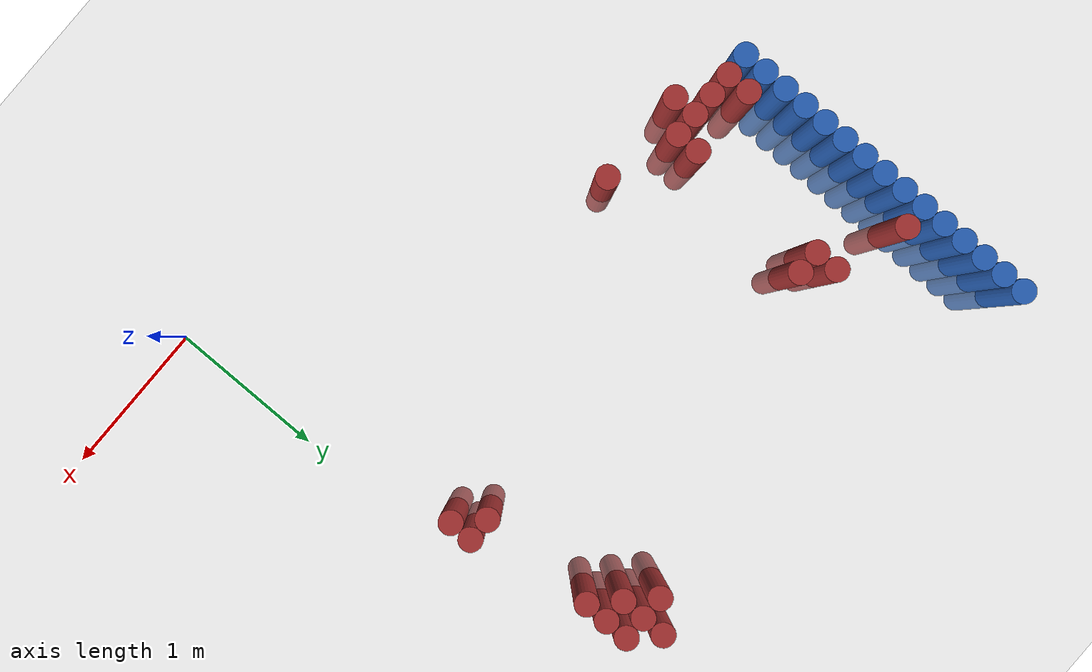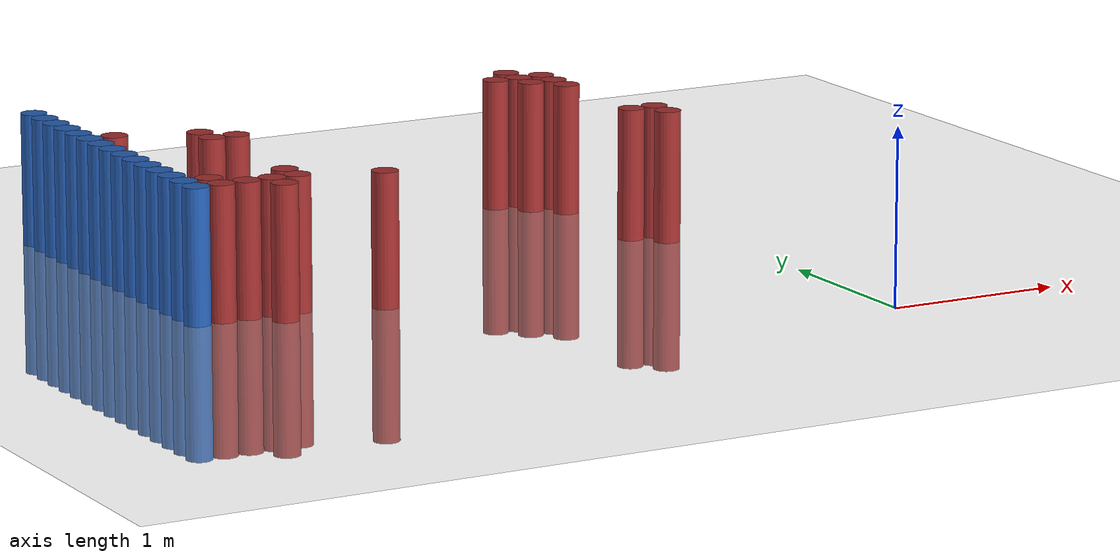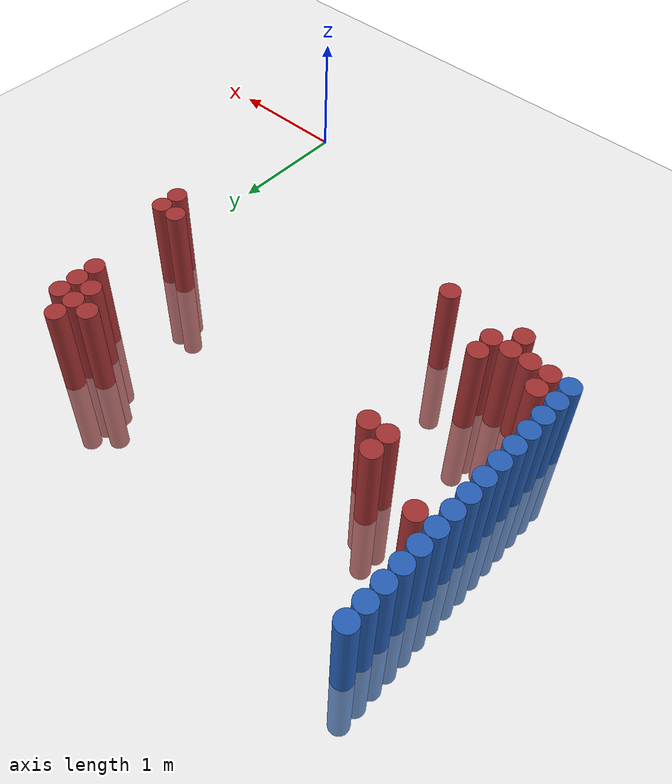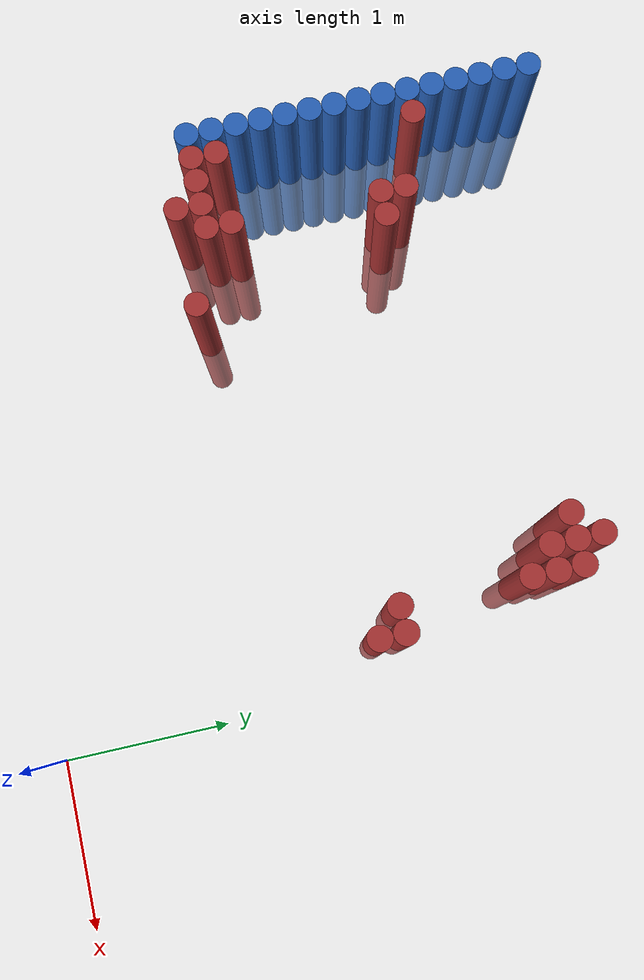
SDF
<sdf version="1.6">
 <world name="default">
  <model name="ground_plane">
   <static>1</static>
   <link name="link">
    <collision name="collision">
     <geometry><plane><normal>0 0 1</normal><size>100 100</size></plane></geometry>
     <surface><friction><ode><mu>100</mu><mu2>50</mu2></ode></friction></surface>
    </collision>
    <visual name="visual">
     <cast_shadows>0</cast_shadows>
     <geometry><plane><normal>0 0 1</normal><size>100 100</size></plane></geometry>
     <material>
      <script><uri>file://media/materials/scripts/gazebo.material</uri><name>Gazebo/Grey</name></script>
     </material>
    </visual>
   </link>
  </model>
  <model name="unit_cylinder_135">
   <static>1</static>
   <pose>-3.425000 1.525000 0.000000 0.000000 0.000000 0.000000</pose>
   <link name="link">
    <inertial>
     <mass>1</mass>
     <inertia><ixx>0.145833</ixx><ixy>0</ixy><ixz>0</ixz><iyy>0.145833</iyy><iyz>0</iyz><izz>0.125</izz></inertia>
    </inertial>
    <collision name="collision">
     <geometry><cylinder><radius>0.075000</radius><length>1.5</length></cylinder></geometry>
    </collision>
    <visual name="visual">
     <geometry><cylinder><radius>0.075000</radius><length>1.5</length></cylinder></geometry>
     <material>
      <ambient>0.152000 0.379000 0.720000 1</ambient>
      <diffuse>0.152000 0.379000 0.720000 1</diffuse>
     </material>
     <material>
      <script><name>Gazebo/Grey</name><uri>file://media/materials/scripts/gazebo.material</uri></script>
     </material>
    </visual>
   </link>
  </model>
  <model name="unit_cylinder_137">
   <static>1</static>
   <pose>-3.425000 1.675000 0.000000 0.000000 0.000000 0.000000</pose>
   <link name="link">
    <inertial>
     <mass>1</mass>
     <inertia><ixx>0.145833</ixx><ixy>0</ixy><ixz>0</ixz><iyy>0.145833</iyy><iyz>0</iyz><izz>0.125</izz></inertia>
    </inertial>
    <collision name="collision">
     <geometry><cylinder><radius>0.075000</radius><length>1.5</length></cylinder></geometry>
    </collision>
    <visual name="visual">
     <geometry><cylinder><radius>0.075000</radius><length>1.5</length></cylinder></geometry>
     <material>
      <ambient>0.152000 0.379000 0.720000 1</ambient>
      <diffuse>0.152000 0.379000 0.720000 1</diffuse>
     </material>
     <material>
      <script><name>Gazebo/Grey</name><uri>file://media/materials/scripts/gazebo.material</uri></script>
     </material>
    </visual>
   </link>
  </model>
  <model name="unit_cylinder_139">
   <static>1</static>
   <pose>-3.425000 1.825000 0.000000 0.000000 0.000000 0.000000</pose>
   <link name="link">
    <inertial>
     <mass>1</mass>
     <inertia><ixx>0.145833</ixx><ixy>0</ixy><ixz>0</ixz><iyy>0.145833</iyy><iyz>0</iyz><izz>0.125</izz></inertia>
    </inertial>
    <collision name="collision">
     <geometry><cylinder><radius>0.075000</radius><length>1.5</length></cylinder></geometry>
    </collision>
    <visual name="visual">
     <geometry><cylinder><radius>0.075000</radius><length>1.5</length></cylinder></geometry>
     <material>
      <ambient>0.152000 0.379000 0.720000 1</ambient>
      <diffuse>0.152000 0.379000 0.720000 1</diffuse>
     </material>
     <material>
      <script><name>Gazebo/Grey</name><uri>file://media/materials/scripts/gazebo.material</uri></script>
     </material>
    </visual>
   </link>
  </model>
  <model name="unit_cylinder_141">
   <static>1</static>
   <pose>-3.425000 1.975000 0.000000 0.000000 0.000000 0.000000</pose>
   <link name="link">
    <inertial>
     <mass>1</mass>
     <inertia><ixx>0.145833</ixx><ixy>0</ixy><ixz>0</ixz><iyy>0.145833</iyy><iyz>0</iyz><izz>0.125</izz></inertia>
    </inertial>
    <collision name="collision">
     <geometry><cylinder><radius>0.075000</radius><length>1.5</length></cylinder></geometry>
    </collision>
    <visual name="visual">
     <geometry><cylinder><radius>0.075000</radius><length>1.5</length></cylinder></geometry>
     <material>
      <ambient>0.152000 0.379000 0.720000 1</ambient>
      <diffuse>0.152000 0.379000 0.720000 1</diffuse>
     </material>
     <material>
      <script><name>Gazebo/Grey</name><uri>file://media/materials/scripts/gazebo.material</uri></script>
     </material>
    </visual>
   </link>
  </model>
  <model name="unit_cylinder_143">
   <static>1</static>
   <pose>-3.425000 2.125000 0.000000 0.000000 0.000000 0.000000</pose>
   <link name="link">
    <inertial>
     <mass>1</mass>
     <inertia><ixx>0.145833</ixx><ixy>0</ixy><ixz>0</ixz><iyy>0.145833</iyy><iyz>0</iyz><izz>0.125</izz></inertia>
    </inertial>
    <collision name="collision">
     <geometry><cylinder><radius>0.075000</radius><length>1.5</length></cylinder></geometry>
    </collision>
    <visual name="visual">
     <geometry><cylinder><radius>0.075000</radius><length>1.5</length></cylinder></geometry>
     <material>
      <ambient>0.152000 0.379000 0.720000 1</ambient>
      <diffuse>0.152000 0.379000 0.720000 1</diffuse>
     </material>
     <material>
      <script><name>Gazebo/Grey</name><uri>file://media/materials/scripts/gazebo.material</uri></script>
     </material>
    </visual>
   </link>
  </model>
  <model name="unit_cylinder_145">
   <static>1</static>
   <pose>-3.425000 2.275000 0.000000 0.000000 0.000000 0.000000</pose>
   <link name="link">
    <inertial>
     <mass>1</mass>
     <inertia><ixx>0.145833</ixx><ixy>0</ixy><ixz>0</ixz><iyy>0.145833</iyy><iyz>0</iyz><izz>0.125</izz></inertia>
    </inertial>
    <collision name="collision">
     <geometry><cylinder><radius>0.075000</radius><length>1.5</length></cylinder></geometry>
    </collision>
    <visual name="visual">
     <geometry><cylinder><radius>0.075000</radius><length>1.5</length></cylinder></geometry>
     <material>
      <ambient>0.152000 0.379000 0.720000 1</ambient>
      <diffuse>0.152000 0.379000 0.720000 1</diffuse>
     </material>
     <material>
      <script><name>Gazebo/Grey</name><uri>file://media/materials/scripts/gazebo.material</uri></script>
     </material>
    </visual>
   </link>
  </model>
  <model name="unit_cylinder_147">
   <static>1</static>
   <pose>-3.425000 2.425000 0.000000 0.000000 0.000000 0.000000</pose>
   <link name="link">
    <inertial>
     <mass>1</mass>
     <inertia><ixx>0.145833</ixx><ixy>0</ixy><ixz>0</ixz><iyy>0.145833</iyy><iyz>0</iyz><izz>0.125</izz></inertia>
    </inertial>
    <collision name="collision">
     <geometry><cylinder><radius>0.075000</radius><length>1.5</length></cylinder></geometry>
    </collision>
    <visual name="visual">
     <geometry><cylinder><radius>0.075000</radius><length>1.5</length></cylinder></geometry>
     <material>
      <ambient>0.152000 0.379000 0.720000 1</ambient>
      <diffuse>0.152000 0.379000 0.720000 1</diffuse>
     </material>
     <material>
      <script><name>Gazebo/Grey</name><uri>file://media/materials/scripts/gazebo.material</uri></script>
     </material>
    </visual>
   </link>
  </model>
  <model name="unit_cylinder_149">
   <static>1</static>
   <pose>-3.425000 2.575000 0.000000 0.000000 0.000000 0.000000</pose>
   <link name="link">
    <inertial>
     <mass>1</mass>
     <inertia><ixx>0.145833</ixx><ixy>0</ixy><ixz>0</ixz><iyy>0.145833</iyy><iyz>0</iyz><izz>0.125</izz></inertia>
    </inertial>
    <collision name="collision">
     <geometry><cylinder><radius>0.075000</radius><length>1.5</length></cylinder></geometry>
    </collision>
    <visual name="visual">
     <geometry><cylinder><radius>0.075000</radius><length>1.5</length></cylinder></geometry>
     <material>
      <ambient>0.152000 0.379000 0.720000 1</ambient>
      <diffuse>0.152000 0.379000 0.720000 1</diffuse>
     </material>
     <material>
      <script><name>Gazebo/Grey</name><uri>file://media/materials/scripts/gazebo.material</uri></script>
     </material>
    </visual>
   </link>
  </model>
  <model name="unit_cylinder_151">
   <static>1</static>
   <pose>-3.425000 2.725000 0.000000 0.000000 0.000000 0.000000</pose>
   <link name="link">
    <inertial>
     <mass>1</mass>
     <inertia><ixx>0.145833</ixx><ixy>0</ixy><ixz>0</ixz><iyy>0.145833</iyy><iyz>0</iyz><izz>0.125</izz></inertia>
    </inertial>
    <collision name="collision">
     <geometry><cylinder><radius>0.075000</radius><length>1.5</length></cylinder></geometry>
    </collision>
    <visual name="visual">
     <geometry><cylinder><radius>0.075000</radius><length>1.5</length></cylinder></geometry>
     <material>
      <ambient>0.152000 0.379000 0.720000 1</ambient>
      <diffuse>0.152000 0.379000 0.720000 1</diffuse>
     </material>
     <material>
      <script><name>Gazebo/Grey</name><uri>file://media/materials/scripts/gazebo.material</uri></script>
     </material>
    </visual>
   </link>
  </model>
  <model name="unit_cylinder_153">
   <static>1</static>
   <pose>-3.425000 2.875000 0.000000 0.000000 0.000000 0.000000</pose>
   <link name="link">
    <inertial>
     <mass>1</mass>
     <inertia><ixx>0.145833</ixx><ixy>0</ixy><ixz>0</ixz><iyy>0.145833</iyy><iyz>0</iyz><izz>0.125</izz></inertia>
    </inertial>
    <collision name="collision">
     <geometry><cylinder><radius>0.075000</radius><length>1.5</length></cylinder></geometry>
    </collision>
    <visual name="visual">
     <geometry><cylinder><radius>0.075000</radius><length>1.5</length></cylinder></geometry>
     <material>
      <ambient>0.152000 0.379000 0.720000 1</ambient>
      <diffuse>0.152000 0.379000 0.720000 1</diffuse>
     </material>
     <material>
      <script><name>Gazebo/Grey</name><uri>file://media/materials/scripts/gazebo.material</uri></script>
     </material>
    </visual>
   </link>
  </model>
  <model name="unit_cylinder_155">
   <static>1</static>
   <pose>-3.425000 3.025000 0.000000 0.000000 0.000000 0.000000</pose>
   <link name="link">
    <inertial>
     <mass>1</mass>
     <inertia><ixx>0.145833</ixx><ixy>0</ixy><ixz>0</ixz><iyy>0.145833</iyy><iyz>0</iyz><izz>0.125</izz></inertia>
    </inertial>
    <collision name="collision">
     <geometry><cylinder><radius>0.075000</radius><length>1.5</length></cylinder></geometry>
    </collision>
    <visual name="visual">
     <geometry><cylinder><radius>0.075000</radius><length>1.5</length></cylinder></geometry>
     <material>
      <ambient>0.152000 0.379000 0.720000 1</ambient>
      <diffuse>0.152000 0.379000 0.720000 1</diffuse>
     </material>
     <material>
      <script><name>Gazebo/Grey</name><uri>file://media/materials/scripts/gazebo.material</uri></script>
     </material>
    </visual>
   </link>
  </model>
  <model name="unit_cylinder_157">
   <static>1</static>
   <pose>-3.425000 3.175000 0.000000 0.000000 0.000000 0.000000</pose>
   <link name="link">
    <inertial>
     <mass>1</mass>
     <inertia><ixx>0.145833</ixx><ixy>0</ixy><ixz>0</ixz><iyy>0.145833</iyy><iyz>0</iyz><izz>0.125</izz></inertia>
    </inertial>
    <collision name="collision">
     <geometry><cylinder><radius>0.075000</radius><length>1.5</length></cylinder></geometry>
    </collision>
    <visual name="visual">
     <geometry><cylinder><radius>0.075000</radius><length>1.5</length></cylinder></geometry>
     <material>
      <ambient>0.152000 0.379000 0.720000 1</ambient>
      <diffuse>0.152000 0.379000 0.720000 1</diffuse>
     </material>
     <material>
      <script><name>Gazebo/Grey</name><uri>file://media/materials/scripts/gazebo.material</uri></script>
     </material>
    </visual>
   </link>
  </model>
  <model name="unit_cylinder_159">
   <static>1</static>
   <pose>-3.425000 3.325000 0.000000 0.000000 0.000000 0.000000</pose>
   <link name="link">
    <inertial>
     <mass>1</mass>
     <inertia><ixx>0.145833</ixx><ixy>0</ixy><ixz>0</ixz><iyy>0.145833</iyy><iyz>0</iyz><izz>0.125</izz></inertia>
    </inertial>
    <collision name="collision">
     <geometry><cylinder><radius>0.075000</radius><length>1.5</length></cylinder></geometry>
    </collision>
    <visual name="visual">
     <geometry><cylinder><radius>0.075000</radius><length>1.5</length></cylinder></geometry>
     <material>
      <ambient>0.152000 0.379000 0.720000 1</ambient>
      <diffuse>0.152000 0.379000 0.720000 1</diffuse>
     </material>
     <material>
      <script><name>Gazebo/Grey</name><uri>file://media/materials/scripts/gazebo.material</uri></script>
     </material>
    </visual>
   </link>
  </model>
  <model name="unit_cylinder_161">
   <static>1</static>
   <pose>-3.425000 3.475000 0.000000 0.000000 0.000000 0.000000</pose>
   <link name="link">
    <inertial>
     <mass>1</mass>
     <inertia><ixx>0.145833</ixx><ixy>0</ixy><ixz>0</ixz><iyy>0.145833</iyy><iyz>0</iyz><izz>0.125</izz></inertia>
    </inertial>
    <collision name="collision">
     <geometry><cylinder><radius>0.075000</radius><length>1.5</length></cylinder></geometry>
    </collision>
    <visual name="visual">
     <geometry><cylinder><radius>0.075000</radius><length>1.5</length></cylinder></geometry>
     <material>
      <ambient>0.152000 0.379000 0.720000 1</ambient>
      <diffuse>0.152000 0.379000 0.720000 1</diffuse>
     </material>
     <material>
      <script><name>Gazebo/Grey</name><uri>file://media/materials/scripts/gazebo.material</uri></script>
     </material>
    </visual>
   </link>
  </model>
  <model name="unit_cylinder_163">
   <static>1</static>
   <pose>-3.425000 3.625000 0.000000 0.000000 0.000000 0.000000</pose>
   <link name="link">
    <inertial>
     <mass>1</mass>
     <inertia><ixx>0.145833</ixx><ixy>0</ixy><ixz>0</ixz><iyy>0.145833</iyy><iyz>0</iyz><izz>0.125</izz></inertia>
    </inertial>
    <collision name="collision">
     <geometry><cylinder><radius>0.075000</radius><length>1.5</length></cylinder></geometry>
    </collision>
    <visual name="visual">
     <geometry><cylinder><radius>0.075000</radius><length>1.5</length></cylinder></geometry>
     <material>
      <ambient>0.152000 0.379000 0.720000 1</ambient>
      <diffuse>0.152000 0.379000 0.720000 1</diffuse>
     </material>
     <material>
      <script><name>Gazebo/Grey</name><uri>file://media/materials/scripts/gazebo.material</uri></script>
     </material>
    </visual>
   </link>
  </model>
  <model name="unit_cylinder_231">
   <static>1</static>
   <pose>-3.425000 1.525000 0.000000 0.000000 0.000000 0.000000</pose>
   <link name="link">
    <inertial>
     <mass>1</mass>
     <inertia><ixx>0.145833</ixx><ixy>0</ixy><ixz>0</ixz><iyy>0.145833</iyy><iyz>0</iyz><izz>0.125</izz></inertia>
    </inertial>
    <collision name="collision">
     <geometry><cylinder><radius>0.075000</radius><length>1.5</length></cylinder></geometry>
    </collision>
    <visual name="visual">
     <geometry><cylinder><radius>0.075000</radius><length>1.5</length></cylinder></geometry>
     <material>
      <ambient>0.152000 0.379000 0.720000 1</ambient>
      <diffuse>0.152000 0.379000 0.720000 1</diffuse>
     </material>
     <material>
      <script><name>Gazebo/Grey</name><uri>file://media/materials/scripts/gazebo.material</uri></script>
     </material>
    </visual>
   </link>
  </model>
  <model name="unit_cylinder_232">
   <static>1</static>
   <pose>-3.425000 1.675000 0.000000 0.000000 0.000000 0.000000</pose>
   <link name="link">
    <inertial>
     <mass>1</mass>
     <inertia><ixx>0.145833</ixx><ixy>0</ixy><ixz>0</ixz><iyy>0.145833</iyy><iyz>0</iyz><izz>0.125</izz></inertia>
    </inertial>
    <collision name="collision">
     <geometry><cylinder><radius>0.075000</radius><length>1.5</length></cylinder></geometry>
    </collision>
    <visual name="visual">
     <geometry><cylinder><radius>0.075000</radius><length>1.5</length></cylinder></geometry>
     <material>
      <ambient>0.152000 0.379000 0.720000 1</ambient>
      <diffuse>0.152000 0.379000 0.720000 1</diffuse>
     </material>
     <material>
      <script><name>Gazebo/Grey</name><uri>file://media/materials/scripts/gazebo.material</uri></script>
     </material>
    </visual>
   </link>
  </model>
  <model name="unit_cylinder_233">
   <static>1</static>
   <pose>-3.425000 1.825000 0.000000 0.000000 0.000000 0.000000</pose>
   <link name="link">
    <inertial>
     <mass>1</mass>
     <inertia><ixx>0.145833</ixx><ixy>0</ixy><ixz>0</ixz><iyy>0.145833</iyy><iyz>0</iyz><izz>0.125</izz></inertia>
    </inertial>
    <collision name="collision">
     <geometry><cylinder><radius>0.075000</radius><length>1.5</length></cylinder></geometry>
    </collision>
    <visual name="visual">
     <geometry><cylinder><radius>0.075000</radius><length>1.5</length></cylinder></geometry>
     <material>
      <ambient>0.152000 0.379000 0.720000 1</ambient>
      <diffuse>0.152000 0.379000 0.720000 1</diffuse>
     </material>
     <material>
      <script><name>Gazebo/Grey</name><uri>file://media/materials/scripts/gazebo.material</uri></script>
     </material>
    </visual>
   </link>
  </model>
  <model name="unit_cylinder_234">
   <static>1</static>
   <pose>-3.425000 1.975000 0.000000 0.000000 0.000000 0.000000</pose>
   <link name="link">
    <inertial>
     <mass>1</mass>
     <inertia><ixx>0.145833</ixx><ixy>0</ixy><ixz>0</ixz><iyy>0.145833</iyy><iyz>0</iyz><izz>0.125</izz></inertia>
    </inertial>
    <collision name="collision">
     <geometry><cylinder><radius>0.075000</radius><length>1.5</length></cylinder></geometry>
    </collision>
    <visual name="visual">
     <geometry><cylinder><radius>0.075000</radius><length>1.5</length></cylinder></geometry>
     <material>
      <ambient>0.152000 0.379000 0.720000 1</ambient>
      <diffuse>0.152000 0.379000 0.720000 1</diffuse>
     </material>
     <material>
      <script><name>Gazebo/Grey</name><uri>file://media/materials/scripts/gazebo.material</uri></script>
     </material>
    </visual>
   </link>
  </model>
  <model name="unit_cylinder_235">
   <static>1</static>
   <pose>-3.425000 2.125000 0.000000 0.000000 0.000000 0.000000</pose>
   <link name="link">
    <inertial>
     <mass>1</mass>
     <inertia><ixx>0.145833</ixx><ixy>0</ixy><ixz>0</ixz><iyy>0.145833</iyy><iyz>0</iyz><izz>0.125</izz></inertia>
    </inertial>
    <collision name="collision">
     <geometry><cylinder><radius>0.075000</radius><length>1.5</length></cylinder></geometry>
    </collision>
    <visual name="visual">
     <geometry><cylinder><radius>0.075000</radius><length>1.5</length></cylinder></geometry>
     <material>
      <ambient>0.152000 0.379000 0.720000 1</ambient>
      <diffuse>0.152000 0.379000 0.720000 1</diffuse>
     </material>
     <material>
      <script><name>Gazebo/Grey</name><uri>file://media/materials/scripts/gazebo.material</uri></script>
     </material>
    </visual>
   </link>
  </model>
  <model name="unit_cylinder_236">
   <static>1</static>
   <pose>-3.425000 2.275000 0.000000 0.000000 0.000000 0.000000</pose>
   <link name="link">
    <inertial>
     <mass>1</mass>
     <inertia><ixx>0.145833</ixx><ixy>0</ixy><ixz>0</ixz><iyy>0.145833</iyy><iyz>0</iyz><izz>0.125</izz></inertia>
    </inertial>
    <collision name="collision">
     <geometry><cylinder><radius>0.075000</radius><length>1.5</length></cylinder></geometry>
    </collision>
    <visual name="visual">
     <geometry><cylinder><radius>0.075000</radius><length>1.5</length></cylinder></geometry>
     <material>
      <ambient>0.152000 0.379000 0.720000 1</ambient>
      <diffuse>0.152000 0.379000 0.720000 1</diffuse>
     </material>
     <material>
      <script><name>Gazebo/Grey</name><uri>file://media/materials/scripts/gazebo.material</uri></script>
     </material>
    </visual>
   </link>
  </model>
  <model name="unit_cylinder_237">
   <static>1</static>
   <pose>-3.425000 2.425000 0.000000 0.000000 0.000000 0.000000</pose>
   <link name="link">
    <inertial>
     <mass>1</mass>
     <inertia><ixx>0.145833</ixx><ixy>0</ixy><ixz>0</ixz><iyy>0.145833</iyy><iyz>0</iyz><izz>0.125</izz></inertia>
    </inertial>
    <collision name="collision">
     <geometry><cylinder><radius>0.075000</radius><length>1.5</length></cylinder></geometry>
    </collision>
    <visual name="visual">
     <geometry><cylinder><radius>0.075000</radius><length>1.5</length></cylinder></geometry>
     <material>
      <ambient>0.152000 0.379000 0.720000 1</ambient>
      <diffuse>0.152000 0.379000 0.720000 1</diffuse>
     </material>
     <material>
      <script><name>Gazebo/Grey</name><uri>file://media/materials/scripts/gazebo.material</uri></script>
     </material>
    </visual>
   </link>
  </model>
  <model name="unit_cylinder_238">
   <static>1</static>
   <pose>-3.425000 2.575000 0.000000 0.000000 0.000000 0.000000</pose>
   <link name="link">
    <inertial>
     <mass>1</mass>
     <inertia><ixx>0.145833</ixx><ixy>0</ixy><ixz>0</ixz><iyy>0.145833</iyy><iyz>0</iyz><izz>0.125</izz></inertia>
    </inertial>
    <collision name="collision">
     <geometry><cylinder><radius>0.075000</radius><length>1.5</length></cylinder></geometry>
    </collision>
    <visual name="visual">
     <geometry><cylinder><radius>0.075000</radius><length>1.5</length></cylinder></geometry>
     <material>
      <ambient>0.152000 0.379000 0.720000 1</ambient>
      <diffuse>0.152000 0.379000 0.720000 1</diffuse>
     </material>
     <material>
      <script><name>Gazebo/Grey</name><uri>file://media/materials/scripts/gazebo.material</uri></script>
     </material>
    </visual>
   </link>
  </model>
  <model name="unit_cylinder_239">
   <static>1</static>
   <pose>-3.425000 2.725000 0.000000 0.000000 0.000000 0.000000</pose>
   <link name="link">
    <inertial>
     <mass>1</mass>
     <inertia><ixx>0.145833</ixx><ixy>0</ixy><ixz>0</ixz><iyy>0.145833</iyy><iyz>0</iyz><izz>0.125</izz></inertia>
    </inertial>
    <collision name="collision">
     <geometry><cylinder><radius>0.075000</radius><length>1.5</length></cylinder></geometry>
    </collision>
    <visual name="visual">
     <geometry><cylinder><radius>0.075000</radius><length>1.5</length></cylinder></geometry>
     <material>
      <ambient>0.152000 0.379000 0.720000 1</ambient>
      <diffuse>0.152000 0.379000 0.720000 1</diffuse>
     </material>
     <material>
      <script><name>Gazebo/Grey</name><uri>file://media/materials/scripts/gazebo.material</uri></script>
     </material>
    </visual>
   </link>
  </model>
  <model name="unit_cylinder_240">
   <static>1</static>
   <pose>-3.425000 2.875000 0.000000 0.000000 0.000000 0.000000</pose>
   <link name="link">
    <inertial>
     <mass>1</mass>
     <inertia><ixx>0.145833</ixx><ixy>0</ixy><ixz>0</ixz><iyy>0.145833</iyy><iyz>0</iyz><izz>0.125</izz></inertia>
    </inertial>
    <collision name="collision">
     <geometry><cylinder><radius>0.075000</radius><length>1.5</length></cylinder></geometry>
    </collision>
    <visual name="visual">
     <geometry><cylinder><radius>0.075000</radius><length>1.5</length></cylinder></geometry>
     <material>
      <ambient>0.152000 0.379000 0.720000 1</ambient>
      <diffuse>0.152000 0.379000 0.720000 1</diffuse>
     </material>
     <material>
      <script><name>Gazebo/Grey</name><uri>file://media/materials/scripts/gazebo.material</uri></script>
     </material>
    </visual>
   </link>
  </model>
  <model name="unit_cylinder_241">
   <static>1</static>
   <pose>-3.425000 3.025000 0.000000 0.000000 0.000000 0.000000</pose>
   <link name="link">
    <inertial>
     <mass>1</mass>
     <inertia><ixx>0.145833</ixx><ixy>0</ixy><ixz>0</ixz><iyy>0.145833</iyy><iyz>0</iyz><izz>0.125</izz></inertia>
    </inertial>
    <collision name="collision">
     <geometry><cylinder><radius>0.075000</radius><length>1.5</length></cylinder></geometry>
    </collision>
    <visual name="visual">
     <geometry><cylinder><radius>0.075000</radius><length>1.5</length></cylinder></geometry>
     <material>
      <ambient>0.152000 0.379000 0.720000 1</ambient>
      <diffuse>0.152000 0.379000 0.720000 1</diffuse>
     </material>
     <material>
      <script><name>Gazebo/Grey</name><uri>file://media/materials/scripts/gazebo.material</uri></script>
     </material>
    </visual>
   </link>
  </model>
  <model name="unit_cylinder_242">
   <static>1</static>
   <pose>-3.425000 3.175000 0.000000 0.000000 0.000000 0.000000</pose>
   <link name="link">
    <inertial>
     <mass>1</mass>
     <inertia><ixx>0.145833</ixx><ixy>0</ixy><ixz>0</ixz><iyy>0.145833</iyy><iyz>0</iyz><izz>0.125</izz></inertia>
    </inertial>
    <collision name="collision">
     <geometry><cylinder><radius>0.075000</radius><length>1.5</length></cylinder></geometry>
    </collision>
    <visual name="visual">
     <geometry><cylinder><radius>0.075000</radius><length>1.5</length></cylinder></geometry>
     <material>
      <ambient>0.152000 0.379000 0.720000 1</ambient>
      <diffuse>0.152000 0.379000 0.720000 1</diffuse>
     </material>
     <material>
      <script><name>Gazebo/Grey</name><uri>file://media/materials/scripts/gazebo.material</uri></script>
     </material>
    </visual>
   </link>
  </model>
  <model name="unit_cylinder_243">
   <static>1</static>
   <pose>-3.425000 3.325000 0.000000 0.000000 0.000000 0.000000</pose>
   <link name="link">
    <inertial>
     <mass>1</mass>
     <inertia><ixx>0.145833</ixx><ixy>0</ixy><ixz>0</ixz><iyy>0.145833</iyy><iyz>0</iyz><izz>0.125</izz></inertia>
    </inertial>
    <collision name="collision">
     <geometry><cylinder><radius>0.075000</radius><length>1.5</length></cylinder></geometry>
    </collision>
    <visual name="visual">
     <geometry><cylinder><radius>0.075000</radius><length>1.5</length></cylinder></geometry>
     <material>
      <ambient>0.152000 0.379000 0.720000 1</ambient>
      <diffuse>0.152000 0.379000 0.720000 1</diffuse>
     </material>
     <material>
      <script><name>Gazebo/Grey</name><uri>file://media/materials/scripts/gazebo.material</uri></script>
     </material>
    </visual>
   </link>
  </model>
  <model name="unit_cylinder_244">
   <static>1</static>
   <pose>-3.425000 3.475000 0.000000 0.000000 0.000000 0.000000</pose>
   <link name="link">
    <inertial>
     <mass>1</mass>
     <inertia><ixx>0.145833</ixx><ixy>0</ixy><ixz>0</ixz><iyy>0.145833</iyy><iyz>0</iyz><izz>0.125</izz></inertia>
    </inertial>
    <collision name="collision">
     <geometry><cylinder><radius>0.075000</radius><length>1.5</length></cylinder></geometry>
    </collision>
    <visual name="visual">
     <geometry><cylinder><radius>0.075000</radius><length>1.5</length></cylinder></geometry>
     <material>
      <ambient>0.152000 0.379000 0.720000 1</ambient>
      <diffuse>0.152000 0.379000 0.720000 1</diffuse>
     </material>
     <material>
      <script><name>Gazebo/Grey</name><uri>file://media/materials/scripts/gazebo.material</uri></script>
     </material>
    </visual>
   </link>
  </model>
  <model name="unit_cylinder_265">
   <static>1</static>
   <pose>-3.275000 1.525000 0.000000 0.000000 0.000000 0.000000</pose>
   <link name="link">
    <inertial>
     <mass>1</mass>
     <inertia><ixx>0.145833</ixx><ixy>0</ixy><ixz>0</ixz><iyy>0.145833</iyy><iyz>0</iyz><izz>0.125</izz></inertia>
    </inertial>
    <collision name="collision">
     <geometry><cylinder><radius>0.075000</radius><length>1.5</length></cylinder></geometry>
    </collision>
    <visual name="visual">
     <geometry><cylinder><radius>0.075000</radius><length>1.5</length></cylinder></geometry>
     <material>
      <ambient>0.648000 0.192000 0.192000 1</ambient>
      <diffuse>0.648000 0.192000 0.192000 1</diffuse>
     </material>
     <material>
      <script><name>Gazebo/Grey</name><uri>file://media/materials/scripts/gazebo.material</uri></script>
     </material>
    </visual>
   </link>
  </model>
  <model name="unit_cylinder_266">
   <static>1</static>
   <pose>-3.275000 1.675000 0.000000 0.000000 0.000000 0.000000</pose>
   <link name="link">
    <inertial>
     <mass>1</mass>
     <inertia><ixx>0.145833</ixx><ixy>0</ixy><ixz>0</ixz><iyy>0.145833</iyy><iyz>0</iyz><izz>0.125</izz></inertia>
    </inertial>
    <collision name="collision">
     <geometry><cylinder><radius>0.075000</radius><length>1.5</length></cylinder></geometry>
    </collision>
    <visual name="visual">
     <geometry><cylinder><radius>0.075000</radius><length>1.5</length></cylinder></geometry>
     <material>
      <ambient>0.648000 0.192000 0.192000 1</ambient>
      <diffuse>0.648000 0.192000 0.192000 1</diffuse>
     </material>
     <material>
      <script><name>Gazebo/Grey</name><uri>file://media/materials/scripts/gazebo.material</uri></script>
     </material>
    </visual>
   </link>
  </model>
  <model name="unit_cylinder_267">
   <static>1</static>
   <pose>-3.275000 2.875000 0.000000 0.000000 0.000000 0.000000</pose>
   <link name="link">
    <inertial>
     <mass>1</mass>
     <inertia><ixx>0.145833</ixx><ixy>0</ixy><ixz>0</ixz><iyy>0.145833</iyy><iyz>0</iyz><izz>0.125</izz></inertia>
    </inertial>
    <collision name="collision">
     <geometry><cylinder><radius>0.075000</radius><length>1.5</length></cylinder></geometry>
    </collision>
    <visual name="visual">
     <geometry><cylinder><radius>0.075000</radius><length>1.5</length></cylinder></geometry>
     <material>
      <ambient>0.648000 0.192000 0.192000 1</ambient>
      <diffuse>0.648000 0.192000 0.192000 1</diffuse>
     </material>
     <material>
      <script><name>Gazebo/Grey</name><uri>file://media/materials/scripts/gazebo.material</uri></script>
     </material>
    </visual>
   </link>
  </model>
  <model name="unit_cylinder_277">
   <static>1</static>
   <pose>-3.125000 1.525000 0.000000 0.000000 0.000000 0.000000</pose>
   <link name="link">
    <inertial>
     <mass>1</mass>
     <inertia><ixx>0.145833</ixx><ixy>0</ixy><ixz>0</ixz><iyy>0.145833</iyy><iyz>0</iyz><izz>0.125</izz></inertia>
    </inertial>
    <collision name="collision">
     <geometry><cylinder><radius>0.075000</radius><length>1.5</length></cylinder></geometry>
    </collision>
    <visual name="visual">
     <geometry><cylinder><radius>0.075000</radius><length>1.5</length></cylinder></geometry>
     <material>
      <ambient>0.648000 0.192000 0.192000 1</ambient>
      <diffuse>0.648000 0.192000 0.192000 1</diffuse>
     </material>
     <material>
      <script><name>Gazebo/Grey</name><uri>file://media/materials/scripts/gazebo.material</uri></script>
     </material>
    </visual>
   </link>
  </model>
  <model name="unit_cylinder_281">
   <static>1</static>
   <pose>-2.975000 1.375000 0.000000 0.000000 0.000000 0.000000</pose>
   <link name="link">
    <inertial>
     <mass>1</mass>
     <inertia><ixx>0.145833</ixx><ixy>0</ixy><ixz>0</ixz><iyy>0.145833</iyy><iyz>0</iyz><izz>0.125</izz></inertia>
    </inertial>
    <collision name="collision">
     <geometry><cylinder><radius>0.075000</radius><length>1.5</length></cylinder></geometry>
    </collision>
    <visual name="visual">
     <geometry><cylinder><radius>0.075000</radius><length>1.5</length></cylinder></geometry>
     <material>
      <ambient>0.648000 0.192000 0.192000 1</ambient>
      <diffuse>0.648000 0.192000 0.192000 1</diffuse>
     </material>
     <material>
      <script><name>Gazebo/Grey</name><uri>file://media/materials/scripts/gazebo.material</uri></script>
     </material>
    </visual>
   </link>
  </model>
  <model name="unit_cylinder_282">
   <static>1</static>
   <pose>-2.975000 1.525000 0.000000 0.000000 0.000000 0.000000</pose>
   <link name="link">
    <inertial>
     <mass>1</mass>
     <inertia><ixx>0.145833</ixx><ixy>0</ixy><ixz>0</ixz><iyy>0.145833</iyy><iyz>0</iyz><izz>0.125</izz></inertia>
    </inertial>
    <collision name="collision">
     <geometry><cylinder><radius>0.075000</radius><length>1.5</length></cylinder></geometry>
    </collision>
    <visual name="visual">
     <geometry><cylinder><radius>0.075000</radius><length>1.5</length></cylinder></geometry>
     <material>
      <ambient>0.648000 0.192000 0.192000 1</ambient>
      <diffuse>0.648000 0.192000 0.192000 1</diffuse>
     </material>
     <material>
      <script><name>Gazebo/Grey</name><uri>file://media/materials/scripts/gazebo.material</uri></script>
     </material>
    </visual>
   </link>
  </model>
  <model name="unit_cylinder_284">
   <static>1</static>
   <pose>-2.825000 1.525000 0.000000 0.000000 0.000000 0.000000</pose>
   <link name="link">
    <inertial>
     <mass>1</mass>
     <inertia><ixx>0.145833</ixx><ixy>0</ixy><ixz>0</ixz><iyy>0.145833</iyy><iyz>0</iyz><izz>0.125</izz></inertia>
    </inertial>
    <collision name="collision">
     <geometry><cylinder><radius>0.075000</radius><length>1.5</length></cylinder></geometry>
    </collision>
    <visual name="visual">
     <geometry><cylinder><radius>0.075000</radius><length>1.5</length></cylinder></geometry>
     <material>
      <ambient>0.648000 0.192000 0.192000 1</ambient>
      <diffuse>0.648000 0.192000 0.192000 1</diffuse>
     </material>
     <material>
      <script><name>Gazebo/Grey</name><uri>file://media/materials/scripts/gazebo.material</uri></script>
     </material>
    </visual>
   </link>
  </model>
  <model name="unit_cylinder_285">
   <static>1</static>
   <pose>-2.825000 1.675000 0.000000 0.000000 0.000000 0.000000</pose>
   <link name="link">
    <inertial>
     <mass>1</mass>
     <inertia><ixx>0.145833</ixx><ixy>0</ixy><ixz>0</ixz><iyy>0.145833</iyy><iyz>0</iyz><izz>0.125</izz></inertia>
    </inertial>
    <collision name="collision">
     <geometry><cylinder><radius>0.075000</radius><length>1.5</length></cylinder></geometry>
    </collision>
    <visual name="visual">
     <geometry><cylinder><radius>0.075000</radius><length>1.5</length></cylinder></geometry>
     <material>
      <ambient>0.648000 0.192000 0.192000 1</ambient>
      <diffuse>0.648000 0.192000 0.192000 1</diffuse>
     </material>
     <material>
      <script><name>Gazebo/Grey</name><uri>file://media/materials/scripts/gazebo.material</uri></script>
     </material>
    </visual>
   </link>
  </model>
  <model name="unit_cylinder_286">
   <static>1</static>
   <pose>-2.825000 2.575000 0.000000 0.000000 0.000000 0.000000</pose>
   <link name="link">
    <inertial>
     <mass>1</mass>
     <inertia><ixx>0.145833</ixx><ixy>0</ixy><ixz>0</ixz><iyy>0.145833</iyy><iyz>0</iyz><izz>0.125</izz></inertia>
    </inertial>
    <collision name="collision">
     <geometry><cylinder><radius>0.075000</radius><length>1.5</length></cylinder></geometry>
    </collision>
    <visual name="visual">
     <geometry><cylinder><radius>0.075000</radius><length>1.5</length></cylinder></geometry>
     <material>
      <ambient>0.648000 0.192000 0.192000 1</ambient>
      <diffuse>0.648000 0.192000 0.192000 1</diffuse>
     </material>
     <material>
      <script><name>Gazebo/Grey</name><uri>file://media/materials/scripts/gazebo.material</uri></script>
     </material>
    </visual>
   </link>
  </model>
  <model name="unit_cylinder_287">
   <static>1</static>
   <pose>-2.825000 2.725000 0.000000 0.000000 0.000000 0.000000</pose>
   <link name="link">
    <inertial>
     <mass>1</mass>
     <inertia><ixx>0.145833</ixx><ixy>0</ixy><ixz>0</ixz><iyy>0.145833</iyy><iyz>0</iyz><izz>0.125</izz></inertia>
    </inertial>
    <collision name="collision">
     <geometry><cylinder><radius>0.075000</radius><length>1.5</length></cylinder></geometry>
    </collision>
    <visual name="visual">
     <geometry><cylinder><radius>0.075000</radius><length>1.5</length></cylinder></geometry>
     <material>
      <ambient>0.648000 0.192000 0.192000 1</ambient>
      <diffuse>0.648000 0.192000 0.192000 1</diffuse>
     </material>
     <material>
      <script><name>Gazebo/Grey</name><uri>file://media/materials/scripts/gazebo.material</uri></script>
     </material>
    </visual>
   </link>
  </model>
  <model name="unit_cylinder_288">
   <static>1</static>
   <pose>-2.675000 2.575000 0.000000 0.000000 0.000000 0.000000</pose>
   <link name="link">
    <inertial>
     <mass>1</mass>
     <inertia><ixx>0.145833</ixx><ixy>0</ixy><ixz>0</ixz><iyy>0.145833</iyy><iyz>0</iyz><izz>0.125</izz></inertia>
    </inertial>
    <collision name="collision">
     <geometry><cylinder><radius>0.075000</radius><length>1.5</length></cylinder></geometry>
    </collision>
    <visual name="visual">
     <geometry><cylinder><radius>0.075000</radius><length>1.5</length></cylinder></geometry>
     <material>
      <ambient>0.648000 0.192000 0.192000 1</ambient>
      <diffuse>0.648000 0.192000 0.192000 1</diffuse>
     </material>
     <material>
      <script><name>Gazebo/Grey</name><uri>file://media/materials/scripts/gazebo.material</uri></script>
     </material>
    </visual>
   </link>
  </model>
  <model name="unit_cylinder_291">
   <static>1</static>
   <pose>-2.375000 1.375000 0.000000 0.000000 0.000000 0.000000</pose>
   <link name="link">
    <inertial>
     <mass>1</mass>
     <inertia><ixx>0.145833</ixx><ixy>0</ixy><ixz>0</ixz><iyy>0.145833</iyy><iyz>0</iyz><izz>0.125</izz></inertia>
    </inertial>
    <collision name="collision">
     <geometry><cylinder><radius>0.075000</radius><length>1.5</length></cylinder></geometry>
    </collision>
    <visual name="visual">
     <geometry><cylinder><radius>0.075000</radius><length>1.5</length></cylinder></geometry>
     <material>
      <ambient>0.648000 0.192000 0.192000 1</ambient>
      <diffuse>0.648000 0.192000 0.192000 1</diffuse>
     </material>
     <material>
      <script><name>Gazebo/Grey</name><uri>file://media/materials/scripts/gazebo.material</uri></script>
     </material>
    </visual>
   </link>
  </model>
  <model name="unit_cylinder_315">
   <static>1</static>
   <pose>-0.725000 3.175000 0.000000 0.000000 0.000000 0.000000</pose>
   <link name="link">
    <inertial>
     <mass>1</mass>
     <inertia><ixx>0.145833</ixx><ixy>0</ixy><ixz>0</ixz><iyy>0.145833</iyy><iyz>0</iyz><izz>0.125</izz></inertia>
    </inertial>
    <collision name="collision">
     <geometry><cylinder><radius>0.075000</radius><length>1.5</length></cylinder></geometry>
    </collision>
    <visual name="visual">
     <geometry><cylinder><radius>0.075000</radius><length>1.5</length></cylinder></geometry>
     <material>
      <ambient>0.648000 0.192000 0.192000 1</ambient>
      <diffuse>0.648000 0.192000 0.192000 1</diffuse>
     </material>
     <material>
      <script><name>Gazebo/Grey</name><uri>file://media/materials/scripts/gazebo.material</uri></script>
     </material>
    </visual>
   </link>
  </model>
  <model name="unit_cylinder_316">
   <static>1</static>
   <pose>-0.575000 3.025000 0.000000 0.000000 0.000000 0.000000</pose>
   <link name="link">
    <inertial>
     <mass>1</mass>
     <inertia><ixx>0.145833</ixx><ixy>0</ixy><ixz>0</ixz><iyy>0.145833</iyy><iyz>0</iyz><izz>0.125</izz></inertia>
    </inertial>
    <collision name="collision">
     <geometry><cylinder><radius>0.075000</radius><length>1.5</length></cylinder></geometry>
    </collision>
    <visual name="visual">
     <geometry><cylinder><radius>0.075000</radius><length>1.5</length></cylinder></geometry>
     <material>
      <ambient>0.648000 0.192000 0.192000 1</ambient>
      <diffuse>0.648000 0.192000 0.192000 1</diffuse>
     </material>
     <material>
      <script><name>Gazebo/Grey</name><uri>file://media/materials/scripts/gazebo.material</uri></script>
     </material>
    </visual>
   </link>
  </model>
  <model name="unit_cylinder_317">
   <static>1</static>
   <pose>-0.575000 3.175000 0.000000 0.000000 0.000000 0.000000</pose>
   <link name="link">
    <inertial>
     <mass>1</mass>
     <inertia><ixx>0.145833</ixx><ixy>0</ixy><ixz>0</ixz><iyy>0.145833</iyy><iyz>0</iyz><izz>0.125</izz></inertia>
    </inertial>
    <collision name="collision">
     <geometry><cylinder><radius>0.075000</radius><length>1.5</length></cylinder></geometry>
    </collision>
    <visual name="visual">
     <geometry><cylinder><radius>0.075000</radius><length>1.5</length></cylinder></geometry>
     <material>
      <ambient>0.648000 0.192000 0.192000 1</ambient>
      <diffuse>0.648000 0.192000 0.192000 1</diffuse>
     </material>
     <material>
      <script><name>Gazebo/Grey</name><uri>file://media/materials/scripts/gazebo.material</uri></script>
     </material>
    </visual>
   </link>
  </model>
  <model name="unit_cylinder_318">
   <static>1</static>
   <pose>-0.575000 3.325000 0.000000 0.000000 0.000000 0.000000</pose>
   <link name="link">
    <inertial>
     <mass>1</mass>
     <inertia><ixx>0.145833</ixx><ixy>0</ixy><ixz>0</ixz><iyy>0.145833</iyy><iyz>0</iyz><izz>0.125</izz></inertia>
    </inertial>
    <collision name="collision">
     <geometry><cylinder><radius>0.075000</radius><length>1.5</length></cylinder></geometry>
    </collision>
    <visual name="visual">
     <geometry><cylinder><radius>0.075000</radius><length>1.5</length></cylinder></geometry>
     <material>
      <ambient>0.648000 0.192000 0.192000 1</ambient>
      <diffuse>0.648000 0.192000 0.192000 1</diffuse>
     </material>
     <material>
      <script><name>Gazebo/Grey</name><uri>file://media/materials/scripts/gazebo.material</uri></script>
     </material>
    </visual>
   </link>
  </model>
  <model name="unit_cylinder_319">
   <static>1</static>
   <pose>-0.425000 2.125000 0.000000 0.000000 0.000000 0.000000</pose>
   <link name="link">
    <inertial>
     <mass>1</mass>
     <inertia><ixx>0.145833</ixx><ixy>0</ixy><ixz>0</ixz><iyy>0.145833</iyy><iyz>0</iyz><izz>0.125</izz></inertia>
    </inertial>
    <collision name="collision">
     <geometry><cylinder><radius>0.075000</radius><length>1.5</length></cylinder></geometry>
    </collision>
    <visual name="visual">
     <geometry><cylinder><radius>0.075000</radius><length>1.5</length></cylinder></geometry>
     <material>
      <ambient>0.648000 0.192000 0.192000 1</ambient>
      <diffuse>0.648000 0.192000 0.192000 1</diffuse>
     </material>
     <material>
      <script><name>Gazebo/Grey</name><uri>file://media/materials/scripts/gazebo.material</uri></script>
     </material>
    </visual>
   </link>
  </model>
  <model name="unit_cylinder_320">
   <static>1</static>
   <pose>-0.425000 2.875000 0.000000 0.000000 0.000000 0.000000</pose>
   <link name="link">
    <inertial>
     <mass>1</mass>
     <inertia><ixx>0.145833</ixx><ixy>0</ixy><ixz>0</ixz><iyy>0.145833</iyy><iyz>0</iyz><izz>0.125</izz></inertia>
    </inertial>
    <collision name="collision">
     <geometry><cylinder><radius>0.075000</radius><length>1.5</length></cylinder></geometry>
    </collision>
    <visual name="visual">
     <geometry><cylinder><radius>0.075000</radius><length>1.5</length></cylinder></geometry>
     <material>
      <ambient>0.648000 0.192000 0.192000 1</ambient>
      <diffuse>0.648000 0.192000 0.192000 1</diffuse>
     </material>
     <material>
      <script><name>Gazebo/Grey</name><uri>file://media/materials/scripts/gazebo.material</uri></script>
     </material>
    </visual>
   </link>
  </model>
  <model name="unit_cylinder_321">
   <static>1</static>
   <pose>-0.425000 3.025000 0.000000 0.000000 0.000000 0.000000</pose>
   <link name="link">
    <inertial>
     <mass>1</mass>
     <inertia><ixx>0.145833</ixx><ixy>0</ixy><ixz>0</ixz><iyy>0.145833</iyy><iyz>0</iyz><izz>0.125</izz></inertia>
    </inertial>
    <collision name="collision">
     <geometry><cylinder><radius>0.075000</radius><length>1.5</length></cylinder></geometry>
    </collision>
    <visual name="visual">
     <geometry><cylinder><radius>0.075000</radius><length>1.5</length></cylinder></geometry>
     <material>
      <ambient>0.648000 0.192000 0.192000 1</ambient>
      <diffuse>0.648000 0.192000 0.192000 1</diffuse>
     </material>
     <material>
      <script><name>Gazebo/Grey</name><uri>file://media/materials/scripts/gazebo.material</uri></script>
     </material>
    </visual>
   </link>
  </model>
  <model name="unit_cylinder_322">
   <static>1</static>
   <pose>-0.425000 3.175000 0.000000 0.000000 0.000000 0.000000</pose>
   <link name="link">
    <inertial>
     <mass>1</mass>
     <inertia><ixx>0.145833</ixx><ixy>0</ixy><ixz>0</ixz><iyy>0.145833</iyy><iyz>0</iyz><izz>0.125</izz></inertia>
    </inertial>
    <collision name="collision">
     <geometry><cylinder><radius>0.075000</radius><length>1.5</length></cylinder></geometry>
    </collision>
    <visual name="visual">
     <geometry><cylinder><radius>0.075000</radius><length>1.5</length></cylinder></geometry>
     <material>
      <ambient>0.648000 0.192000 0.192000 1</ambient>
      <diffuse>0.648000 0.192000 0.192000 1</diffuse>
     </material>
     <material>
      <script><name>Gazebo/Grey</name><uri>file://media/materials/scripts/gazebo.material</uri></script>
     </material>
    </visual>
   </link>
  </model>
  <model name="unit_cylinder_324">
   <static>1</static>
   <pose>-0.275000 1.975000 0.000000 0.000000 0.000000 0.000000</pose>
   <link name="link">
    <inertial>
     <mass>1</mass>
     <inertia><ixx>0.145833</ixx><ixy>0</ixy><ixz>0</ixz><iyy>0.145833</iyy><iyz>0</iyz><izz>0.125</izz></inertia>
    </inertial>
    <collision name="collision">
     <geometry><cylinder><radius>0.075000</radius><length>1.5</length></cylinder></geometry>
    </collision>
    <visual name="visual">
     <geometry><cylinder><radius>0.075000</radius><length>1.5</length></cylinder></geometry>
     <material>
      <ambient>0.648000 0.192000 0.192000 1</ambient>
      <diffuse>0.648000 0.192000 0.192000 1</diffuse>
     </material>
     <material>
      <script><name>Gazebo/Grey</name><uri>file://media/materials/scripts/gazebo.material</uri></script>
     </material>
    </visual>
   </link>
  </model>
  <model name="unit_cylinder_325">
   <static>1</static>
   <pose>-0.275000 2.125000 0.000000 0.000000 0.000000 0.000000</pose>
   <link name="link">
    <inertial>
     <mass>1</mass>
     <inertia><ixx>0.145833</ixx><ixy>0</ixy><ixz>0</ixz><iyy>0.145833</iyy><iyz>0</iyz><izz>0.125</izz></inertia>
    </inertial>
    <collision name="collision">
     <geometry><cylinder><radius>0.075000</radius><length>1.5</length></cylinder></geometry>
    </collision>
    <visual name="visual">
     <geometry><cylinder><radius>0.075000</radius><length>1.5</length></cylinder></geometry>
     <material>
      <ambient>0.648000 0.192000 0.192000 1</ambient>
      <diffuse>0.648000 0.192000 0.192000 1</diffuse>
     </material>
     <material>
      <script><name>Gazebo/Grey</name><uri>file://media/materials/scripts/gazebo.material</uri></script>
     </material>
    </visual>
   </link>
  </model>
 </world>
</sdf>
